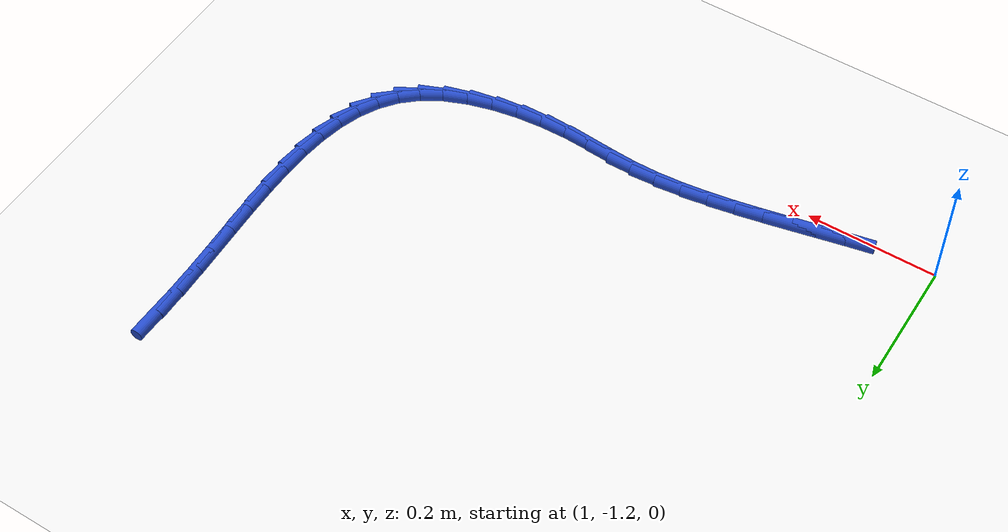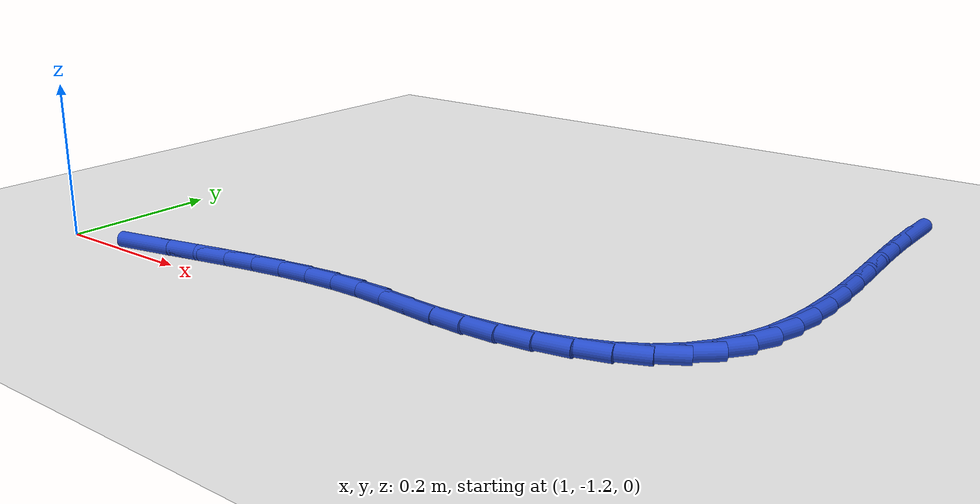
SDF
<sdf version="1.6">
 <world name="default">
  <model name="ground_plane">
   <static>1</static>
   <link name="link">
    <collision name="collision">
     <geometry><plane><normal>0 0 1</normal><size>100 100</size></plane></geometry>
     <surface><friction><ode><mu>100</mu><mu2>50</mu2></ode></friction></surface>
    </collision>
    <visual name="visual">
     <cast_shadows>0</cast_shadows>
     <geometry><plane><normal>0 0 1</normal><size>100 100</size></plane></geometry>
     <material>
      <script><uri>file://media/materials/scripts/gazebo.material</uri><name>Gazebo/WhiteGlow</name></script>
     </material>
    </visual>
   </link>
  </model>
  <model name="line">
   <link name="link_112">
    <pose>1.8875524177143064 -0.556307802847245 0.01 0 1.57 1.5496715899083187</pose>
    <collision name="collision">
     <geometry><cylinder><radius>0.01</radius><length>0.08</length></cylinder></geometry>
    </collision>
    <visual name="visual">
     <material>
      <script><name>Gazebo/Blue</name><uri>file://media/materials/scripts/gazebo.material</uri></script>
     </material>
     <geometry><cylinder><radius>0.01</radius><length>0.08</length></cylinder></geometry>
    </visual>
   </link>
   <link name="link_113">
    <pose>1.8866317489914601 -0.5998838138933505 0.01 0 1.57 -1.5585159542089682</pose>
    <collision name="collision">
     <geometry><cylinder><radius>0.01</radius><length>0.08</length></cylinder></geometry>
    </collision>
    <visual name="visual">
     <material>
      <script><name>Gazebo/Blue</name><uri>file://media/materials/scripts/gazebo.material</uri></script>
     </material>
     <geometry><cylinder><radius>0.01</radius><length>0.08</length></cylinder></geometry>
    </visual>
   </link>
   <link name="link_114">
    <pose>1.8871750255183357 -0.6441210072465887 0.01 0 1.57 -1.5383309803882648</pose>
    <collision name="collision">
     <geometry><cylinder><radius>0.01</radius><length>0.08</length></cylinder></geometry>
    </collision>
    <visual name="visual">
     <material>
      <script><name>Gazebo/Blue</name><uri>file://media/materials/scripts/gazebo.material</uri></script>
     </material>
     <geometry><cylinder><radius>0.01</radius><length>0.08</length></cylinder></geometry>
    </visual>
   </link>
   <link name="link_115">
    <pose>1.8886207807001318 -0.6886376184858567 0.01 0 1.57 -1.5305884279146578</pose>
    <collision name="collision">
     <geometry><cylinder><radius>0.01</radius><length>0.08</length></cylinder></geometry>
    </collision>
    <visual name="visual">
     <material>
      <script><name>Gazebo/Blue</name><uri>file://media/materials/scripts/gazebo.material</uri></script>
     </material>
     <geometry><cylinder><radius>0.01</radius><length>0.08</length></cylinder></geometry>
    </visual>
   </link>
   <link name="link_116">
    <pose>1.890407547942047 -0.7330518831900522 0.01 0 1.57 -1.5351568092053804</pose>
    <collision name="collision">
     <geometry><cylinder><radius>0.01</radius><length>0.08</length></cylinder></geometry>
    </collision>
    <visual name="visual">
     <material>
      <script><name>Gazebo/Blue</name><uri>file://media/materials/scripts/gazebo.material</uri></script>
     </material>
     <geometry><cylinder><radius>0.01</radius><length>0.08</length></cylinder></geometry>
    </visual>
   </link>
   <link name="link_117">
    <pose>1.8919738606492815 -0.7769820369380724 0.01 0 1.57 -1.5525839038786116</pose>
    <collision name="collision">
     <geometry><cylinder><radius>0.01</radius><length>0.08</length></cylinder></geometry>
    </collision>
    <visual name="visual">
     <material>
      <script><name>Gazebo/Blue</name><uri>file://media/materials/scripts/gazebo.material</uri></script>
     </material>
     <geometry><cylinder><radius>0.01</radius><length>0.08</length></cylinder></geometry>
    </visual>
   </link>
   <link name="link_118">
    <pose>1.8927582522270334 -0.8200463153088139 0.01 0 1.57 1.55742933049766</pose>
    <collision name="collision">
     <geometry><cylinder><radius>0.01</radius><length>0.08</length></cylinder></geometry>
    </collision>
    <visual name="visual">
     <material>
      <script><name>Gazebo/Blue</name><uri>file://media/materials/scripts/gazebo.material</uri></script>
     </material>
     <geometry><cylinder><radius>0.01</radius><length>0.08</length></cylinder></geometry>
    </visual>
   </link>
   <link name="link_119">
    <pose>1.892199256080502 -0.8618629538811757 0.01 0 1.57 1.5095636894793532</pose>
    <collision name="collision">
     <geometry><cylinder><radius>0.01</radius><length>0.08</length></cylinder></geometry>
    </collision>
    <visual name="visual">
     <material>
      <script><name>Gazebo/Blue</name><uri>file://media/materials/scripts/gazebo.material</uri></script>
     </material>
     <geometry><cylinder><radius>0.01</radius><length>0.08</length></cylinder></geometry>
    </visual>
   </link>
   <link name="link_120">
    <pose>1.8897354056148874 -0.9020501882340548 0.01 0 1.57 1.4423641793681108</pose>
    <collision name="collision">
     <geometry><cylinder><radius>0.01</radius><length>0.08</length></cylinder></geometry>
    </collision>
    <visual name="visual">
     <material>
      <script><name>Gazebo/Blue</name><uri>file://media/materials/scripts/gazebo.material</uri></script>
     </material>
     <geometry><cylinder><radius>0.01</radius><length>0.08</length></cylinder></geometry>
    </visual>
   </link>
   <link name="link_121">
    <pose>1.8848052342353867 -0.9402262539463477 0.01 0 1.57 1.3519635626631297</pose>
    <collision name="collision">
     <geometry><cylinder><radius>0.01</radius><length>0.08</length></cylinder></geometry>
    </collision>
    <visual name="visual">
     <material>
      <script><name>Gazebo/Blue</name><uri>file://media/materials/scripts/gazebo.material</uri></script>
     </material>
     <geometry><cylinder><radius>0.01</radius><length>0.08</length></cylinder></geometry>
    </visual>
   </link>
   <link name="link_122">
    <pose>1.8768472753472 -0.9760093865969525 0.01 0 1.57 1.234276414918451</pose>
    <collision name="collision">
     <geometry><cylinder><radius>0.01</radius><length>0.08</length></cylinder></geometry>
    </collision>
    <visual name="visual">
     <material>
      <script><name>Gazebo/Blue</name><uri>file://media/materials/scripts/gazebo.material</uri></script>
     </material>
     <geometry><cylinder><radius>0.01</radius><length>0.08</length></cylinder></geometry>
    </visual>
   </link>
   <link name="link_123">
    <pose>1.8653000623555267 -1.009017821764766 0.01 0 1.57 1.0866760398212099</pose>
    <collision name="collision">
     <geometry><cylinder><radius>0.01</radius><length>0.08</length></cylinder></geometry>
    </collision>
    <visual name="visual">
     <material>
      <script><name>Gazebo/Blue</name><uri>file://media/materials/scripts/gazebo.material</uri></script>
     </material>
     <geometry><cylinder><radius>0.01</radius><length>0.08</length></cylinder></geometry>
    </visual>
   </link>
   <link name="link_124">
    <pose>1.8496021286655653 -1.0388697950286863 0.01 0 1.57 0.9110835415414253</pose>
    <collision name="collision">
     <geometry><cylinder><radius>0.01</radius><length>0.08</length></cylinder></geometry>
    </collision>
    <visual name="visual">
     <material>
      <script><name>Gazebo/Blue</name><uri>file://media/materials/scripts/gazebo.material</uri></script>
     </material>
     <geometry><cylinder><radius>0.01</radius><length>0.08</length></cylinder></geometry>
    </visual>
   </link>
   <link name="link_125">
    <pose>1.829192007682515 -1.0651835419676094 0.01 0 1.57 0.7171148689940826</pose>
    <collision name="collision">
     <geometry><cylinder><radius>0.01</radius><length>0.08</length></cylinder></geometry>
    </collision>
    <visual name="visual">
     <material>
      <script><name>Gazebo/Blue</name><uri>file://media/materials/scripts/gazebo.material</uri></script>
     </material>
     <geometry><cylinder><radius>0.01</radius><length>0.08</length></cylinder></geometry>
    </visual>
   </link>
   <link name="link_126">
    <pose>1.803509770719435 -1.0875778428355702 0.01 0 1.57 0.5315033607206937</pose>
    <collision name="collision">
     <geometry><cylinder><radius>0.01</radius><length>0.08</length></cylinder></geometry>
    </collision>
    <visual name="visual">
     <material>
      <script><name>Gazebo/Blue</name><uri>file://media/materials/scripts/gazebo.material</uri></script>
     </material>
     <geometry><cylinder><radius>0.01</radius><length>0.08</length></cylinder></geometry>
    </visual>
   </link>
   <link name="link_127">
    <pose>1.772457026783022 -1.1058349389835287 0.01 0 1.57 0.38360678234715434</pose>
    <collision name="collision">
     <geometry><cylinder><radius>0.01</radius><length>0.08</length></cylinder></geometry>
    </collision>
    <visual name="visual">
     <material>
      <script><name>Gazebo/Blue</name><uri>file://media/materials/scripts/gazebo.material</uri></script>
     </material>
     <geometry><cylinder><radius>0.01</radius><length>0.08</length></cylinder></geometry>
    </visual>
   </link>
   <link name="link_128">
    <pose>1.737041313509558 -1.120128754412442 0.01 0 1.57 0.2670280419314254</pose>
    <collision name="collision">
     <geometry><cylinder><radius>0.01</radius><length>0.08</length></cylinder></geometry>
    </collision>
    <visual name="visual">
     <material>
      <script><name>Gazebo/Blue</name><uri>file://media/materials/scripts/gazebo.material</uri></script>
     </material>
     <geometry><cylinder><radius>0.01</radius><length>0.08</length></cylinder></geometry>
    </visual>
   </link>
   <link name="link_129">
    <pose>1.698432373813289 -1.1306906607662845 0.01 0 1.57 0.1720680385831951</pose>
    <collision name="collision">
     <geometry><cylinder><radius>0.01</radius><length>0.08</length></cylinder></geometry>
    </collision>
    <visual name="visual">
     <material>
      <script><name>Gazebo/Blue</name><uri>file://media/materials/scripts/gazebo.material</uri></script>
     </material>
     <geometry><cylinder><radius>0.01</radius><length>0.08</length></cylinder></geometry>
    </visual>
   </link>
   <link name="link_130">
    <pose>1.6577999506084622 -1.1377520296890324 0.01 0 1.57 0.09115554215716556</pose>
    <collision name="collision">
     <geometry><cylinder><radius>0.01</radius><length>0.08</length></cylinder></geometry>
    </collision>
    <visual name="visual">
     <material>
      <script><name>Gazebo/Blue</name><uri>file://media/materials/scripts/gazebo.material</uri></script>
     </material>
     <geometry><cylinder><radius>0.01</radius><length>0.08</length></cylinder></geometry>
    </visual>
   </link>
   <link name="link_131">
    <pose>1.6163137868093238 -1.14154423282466 0.01 0 1.57 0.018322118377003316</pose>
    <collision name="collision">
     <geometry><cylinder><radius>0.01</radius><length>0.08</length></cylinder></geometry>
    </collision>
    <visual name="visual">
     <material>
      <script><name>Gazebo/Blue</name><uri>file://media/materials/scripts/gazebo.material</uri></script>
     </material>
     <geometry><cylinder><radius>0.01</radius><length>0.08</length></cylinder></geometry>
    </visual>
   </link>
   <link name="link_132">
    <pose>1.5751436253301225 -1.1422986418171435 0.01 0 1.57 -0.04905495772409151</pose>
    <collision name="collision">
     <geometry><cylinder><radius>0.01</radius><length>0.08</length></cylinder></geometry>
    </collision>
    <visual name="visual">
     <material>
      <script><name>Gazebo/Blue</name><uri>file://media/materials/scripts/gazebo.material</uri></script>
     </material>
     <geometry><cylinder><radius>0.01</radius><length>0.08</length></cylinder></geometry>
    </visual>
   </link>
   <link name="link_133">
    <pose>1.5353468732733218 -1.1403448463787604 0.01 0 1.57 -0.0826089160756441</pose>
    <collision name="collision">
     <geometry><cylinder><radius>0.01</radius><length>0.08</length></cylinder></geometry>
    </collision>
    <visual name="visual">
     <material>
      <script><name>Gazebo/Blue</name><uri>file://media/materials/scripts/gazebo.material</uri></script>
     </material>
     <geometry><cylinder><radius>0.01</radius><length>0.08</length></cylinder></geometry>
    </visual>
   </link>
   <link name="link_134">
    <pose>1.4966868406641132 -1.1371438983362363 0.01 0 1.57 -0.05855080954886037</pose>
    <collision name="collision">
     <geometry><cylinder><radius>0.01</radius><length>0.08</length></cylinder></geometry>
    </collision>
    <visual name="visual">
     <material>
      <script><name>Gazebo/Blue</name><uri>file://media/materials/scripts/gazebo.material</uri></script>
     </material>
     <geometry><cylinder><radius>0.01</radius><length>0.08</length></cylinder></geometry>
    </visual>
   </link>
   <link name="link_135">
    <pose>1.4580975437193109 -1.1348818782855619 0.01 0 1.57 0.009091494504910097</pose>
    <collision name="collision">
     <geometry><cylinder><radius>0.01</radius><length>0.08</length></cylinder></geometry>
    </collision>
    <visual name="visual">
     <material>
      <script><name>Gazebo/Blue</name><uri>file://media/materials/scripts/gazebo.material</uri></script>
     </material>
     <geometry><cylinder><radius>0.01</radius><length>0.08</length></cylinder></geometry>
    </visual>
   </link>
   <link name="link_136">
    <pose>1.4187429581023572 -1.1352396801425657 0.01 0 1.57 0.07228718573737179</pose>
    <collision name="collision">
     <geometry><cylinder><radius>0.01</radius><length>0.08</length></cylinder></geometry>
    </collision>
    <visual name="visual">
     <material>
      <script><name>Gazebo/Blue</name><uri>file://media/materials/scripts/gazebo.material</uri></script>
     </material>
     <geometry><cylinder><radius>0.01</radius><length>0.08</length></cylinder></geometry>
    </visual>
   </link>
   <link name="link_137">
    <pose>1.3786125064031909 -1.1381456609959488 0.01 0 1.57 0.12239196839357228</pose>
    <collision name="collision">
     <geometry><cylinder><radius>0.01</radius><length>0.08</length></cylinder></geometry>
    </collision>
    <visual name="visual">
     <material>
      <script><name>Gazebo/Blue</name><uri>file://media/materials/scripts/gazebo.material</uri></script>
     </material>
     <geometry><cylinder><radius>0.01</radius><length>0.08</length></cylinder></geometry>
    </visual>
   </link>
   <link name="link_138">
    <pose>1.3378703303864847 -1.1431572252077158 0.01 0 1.57 0.1606475730735257</pose>
    <collision name="collision">
     <geometry><cylinder><radius>0.01</radius><length>0.08</length></cylinder></geometry>
    </collision>
    <visual name="visual">
     <material>
      <script><name>Gazebo/Blue</name><uri>file://media/materials/scripts/gazebo.material</uri></script>
     </material>
     <geometry><cylinder><radius>0.01</radius><length>0.08</length></cylinder></geometry>
    </visual>
   </link>
   <link name="link_139">
    <pose>1.2966805718169123 -1.1498317771398732 0.01 0 1.57 0.18811184185333324</pose>
    <collision name="collision">
     <geometry><cylinder><radius>0.01</radius><length>0.08</length></cylinder></geometry>
    </collision>
    <visual name="visual">
     <material>
      <script><name>Gazebo/Blue</name><uri>file://media/materials/scripts/gazebo.material</uri></script>
     </material>
     <geometry><cylinder><radius>0.01</radius><length>0.08</length></cylinder></geometry>
    </visual>
   </link>
   <link name="link_140">
    <pose>1.2552073724591437 -1.1577267211544247 0.01 0 1.57 0.2055713511532092</pose>
    <collision name="collision">
     <geometry><cylinder><radius>0.01</radius><length>0.08</length></cylinder></geometry>
    </collision>
    <visual name="visual">
     <material>
      <script><name>Gazebo/Blue</name><uri>file://media/materials/scripts/gazebo.material</uri></script>
     </material>
     <geometry><cylinder><radius>0.01</radius><length>0.08</length></cylinder></geometry>
    </visual>
   </link>
   <link name="link_141">
    <pose>1.2136148740778534 -1.1663994616133768 0.01 0 1.57 0.2135054075601905</pose>
    <collision name="collision">
     <geometry><cylinder><radius>0.01</radius><length>0.08</length></cylinder></geometry>
    </collision>
    <visual name="visual">
     <material>
      <script><name>Gazebo/Blue</name><uri>file://media/materials/scripts/gazebo.material</uri></script>
     </material>
     <geometry><cylinder><radius>0.01</radius><length>0.08</length></cylinder></geometry>
    </visual>
   </link>
   <link name="link_142">
    <pose>1.1720672184377134 -1.1754074028787345 0.01 0 1.57 0.21207052917199218</pose>
    <collision name="collision">
     <geometry><cylinder><radius>0.01</radius><length>0.08</length></cylinder></geometry>
    </collision>
    <visual name="visual">
     <material>
      <script><name>Gazebo/Blue</name><uri>file://media/materials/scripts/gazebo.material</uri></script>
     </material>
     <geometry><cylinder><radius>0.01</radius><length>0.08</length></cylinder></geometry>
    </visual>
   </link>
   <link name="link_143">
    <pose>1.1307285473033961 -1.1843079493125024 0.01 0 1.57 0.2010883909278893</pose>
    <collision name="collision">
     <geometry><cylinder><radius>0.01</radius><length>0.08</length></cylinder></geometry>
    </collision>
    <visual name="visual">
     <material>
      <script><name>Gazebo/Blue</name><uri>file://media/materials/scripts/gazebo.material</uri></script>
     </material>
     <geometry><cylinder><radius>0.01</radius><length>0.08</length></cylinder></geometry>
    </visual>
   </link>
  </model>
 </world>
</sdf>
